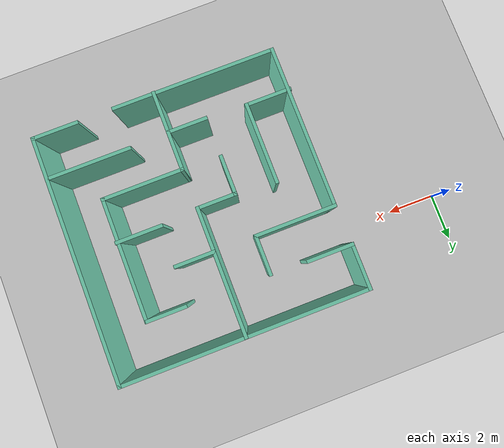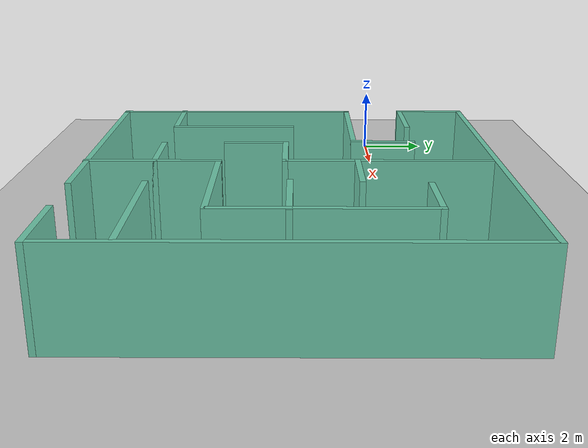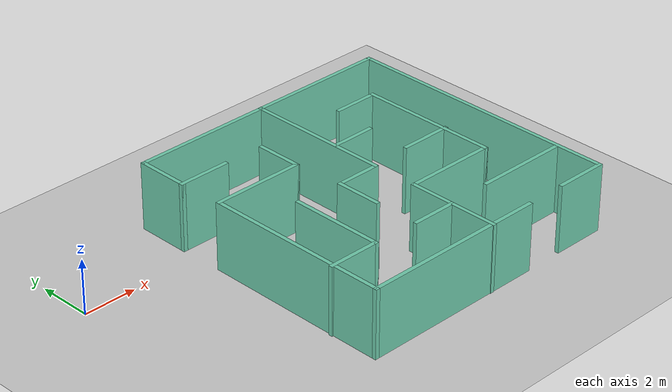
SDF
<sdf version="1.6">
 <world name="default">
  <light name="sun" type="directional">
   <pose>0 0 10 0 -0 0</pose>
   <diffuse>0.8 0.8 0.8 1</diffuse>
   <specular>0.1 0.1 0.1 1</specular>
   <attenuation>
    <range>1000</range>
    <constant>0.9</constant>
    <linear>0.01</linear>
    <quadratic>0.001</quadratic>
   </attenuation>
   <direction>-0.5 0.5 -1</direction>
  </light>
  <model name="ground_plane">
   <static>1</static>
   <link name="link">
    <collision name="collision">
     <geometry><plane><normal>0 0 1</normal><size>100 100</size></plane></geometry>
     <surface><friction><ode><mu>100</mu><mu2>50</mu2></ode></friction></surface>
    </collision>
    <visual name="visual">
     <cast_shadows>0</cast_shadows>
     <geometry><plane><normal>0 0 1</normal><size>100 100</size></plane></geometry>
     <material>
      <script><uri>file://media/materials/scripts/gazebo.material</uri><name>Gazebo/Grey</name></script>
     </material>
    </visual>
   </link>
  </model>
  <gravity>0 0 -9.8</gravity>
  <magnetic_field>6e-06 2.3e-05 -4.2e-05</magnetic_field>
  <atmosphere type="adiabatic"/>
  <physics name="default_physics" default="0" type="ode">
   <max_step_size>0.001</max_step_size>
   <real_time_factor>1</real_time_factor>
   <real_time_update_rate>1000</real_time_update_rate>
  </physics>
  <scene><ambient>0.4 0.4 0.4 1</ambient><background>0.7 0.7 0.7 1</background><shadows>1</shadows></scene>
  <spherical_coordinates>
   <surface_model>EARTH_WGS84</surface_model>
   <latitude_deg>0</latitude_deg>
   <longitude_deg>0</longitude_deg>
   <elevation>0</elevation>
   <heading_deg>0</heading_deg>
  </spherical_coordinates>
  <model name="laberinto">
   <pose>9.79921 -2.73233 0 0 -0 0</pose>
   <link name="Wall_10">
    <collision name="Wall_10_Collision">
     <geometry><box><size>3.5 0.15 2.5</size></box></geometry>
     <pose>0 0 1.25 0 -0 0</pose>
    </collision>
    <visual name="Wall_10_Visual">
     <pose>0 0 1.25 0 -0 0</pose>
     <geometry><box><size>3.5 0.15 2.5</size></box></geometry>
     <material>
      <script><uri>file://media/materials/scripts/gazebo.material</uri><name>Gazebo/Grey</name></script>
      <ambient>0.435294 0.796078 0.67451 1</ambient>
     </material>
    </visual>
    <pose>-3.43379 1.68033 0 0 -0 0</pose>
   </link>
   <link name="Wall_11">
    <collision name="Wall_11_Collision">
     <geometry><box><size>1.75 0.15 2.5</size></box></geometry>
     <pose>0 0 1.25 0 -0 0</pose>
    </collision>
    <visual name="Wall_11_Visual">
     <pose>0 0 1.25 0 -0 0</pose>
     <geometry><box><size>1.75 0.15 2.5</size></box></geometry>
     <material>
      <script><uri>file://media/materials/scripts/gazebo.material</uri><name>Gazebo/Grey</name></script>
      <ambient>0.435294 0.796078 0.67451 1</ambient>
     </material>
    </visual>
    <pose>-1.75879 2.48033 0 0 -0 1.5708</pose>
   </link>
   <link name="Wall_13">
    <collision name="Wall_13_Collision">
     <geometry><box><size>5.5 0.15 2.5</size></box></geometry>
     <pose>0 0 1.25 0 -0 0</pose>
    </collision>
    <visual name="Wall_13_Visual">
     <pose>0 0 1.25 0 -0 0</pose>
     <geometry><box><size>5.5 0.15 2.5</size></box></geometry>
     <material>
      <script><uri>file://media/materials/scripts/gazebo.material</uri><name>Gazebo/Grey</name></script>
      <ambient>0.435294 0.796078 0.67451 1</ambient>
     </material>
    </visual>
    <pose>-0.004278 2.50703 0 0 0 -1.5708</pose>
   </link>
   <link name="Wall_14">
    <collision name="Wall_14_Collision">
     <geometry><box><size>1.75 0.15 2.5</size></box></geometry>
     <pose>0 0 1.25 0 -0 0</pose>
    </collision>
    <visual name="Wall_14_Visual">
     <pose>0 0 1.25 0 -0 0</pose>
     <geometry><box><size>1.75 0.15 2.5</size></box></geometry>
     <material>
      <script><uri>file://media/materials/scripts/gazebo.material</uri><name>Gazebo/Grey</name></script>
      <ambient>0.435294 0.796078 0.67451 1</ambient>
     </material>
    </visual>
    <pose>-0.804278 -0.167975 0 0 -0 3.14159</pose>
   </link>
   <link name="Wall_15">
    <collision name="Wall_15_Collision">
     <geometry><box><size>1.75 0.15 2.5</size></box></geometry>
     <pose>0 0 1.25 0 -0 0</pose>
    </collision>
    <visual name="Wall_15_Visual">
     <pose>0 0 1.25 0 -0 0</pose>
     <geometry><box><size>1.75 0.15 2.5</size></box></geometry>
     <material>
      <script><uri>file://media/materials/scripts/gazebo.material</uri><name>Gazebo/Grey</name></script>
      <ambient>0.435294 0.796078 0.67451 1</ambient>
     </material>
    </visual>
    <pose>-1.60428 -0.967975 0 0 0 -1.5708</pose>
   </link>
   <link name="Wall_17">
    <collision name="Wall_17_Collision">
     <geometry><box><size>2 0.15 2.5</size></box></geometry>
     <pose>0 0 1.25 0 -0 0</pose>
    </collision>
    <visual name="Wall_17_Visual">
     <pose>0 0 1.25 0 -0 0</pose>
     <geometry><box><size>2 0.15 2.5</size></box></geometry>
     <material>
      <script><uri>file://media/materials/scripts/gazebo.material</uri><name>Gazebo/Grey</name></script>
      <ambient>0.435294 0.796078 0.67451 1</ambient>
     </material>
    </visual>
    <pose>-4.23972 -3.38324 0 0 -0 0</pose>
   </link>
   <link name="Wall_18">
    <collision name="Wall_18_Collision">
     <geometry><box><size>3.5 0.15 2.5</size></box></geometry>
     <pose>0 0 1.25 0 -0 0</pose>
    </collision>
    <visual name="Wall_18_Visual">
     <pose>0 0 1.25 0 -0 0</pose>
     <geometry><box><size>3.5 0.15 2.5</size></box></geometry>
     <material>
      <script><uri>file://media/materials/scripts/gazebo.material</uri><name>Gazebo/Grey</name></script>
      <ambient>0.435294 0.796078 0.67451 1</ambient>
     </material>
    </visual>
    <pose>-3.31472 -1.70824 0 0 -0 1.5708</pose>
   </link>
   <link name="Wall_2">
    <collision name="Wall_2_Collision">
     <geometry><box><size>2 0.15 2.5</size></box></geometry>
     <pose>0 0 1.25 0 -0 0</pose>
    </collision>
    <visual name="Wall_2_Visual">
     <pose>0 0 1.25 0 -0 0</pose>
     <geometry><box><size>2 0.15 2.5</size></box></geometry>
     <material>
      <script><uri>file://media/materials/scripts/gazebo.material</uri><name>Gazebo/Grey</name></script>
      <ambient>0.435294 0.796078 0.67451 1</ambient>
     </material>
    </visual>
    <pose>-4.25 3.34205 0 0 -0 3.14159</pose>
   </link>
   <link name="Wall_23">
    <collision name="Wall_23_Collision">
     <geometry><box><size>3.5 0.15 2.5</size></box></geometry>
     <pose>0 0 1.25 0 -0 0</pose>
    </collision>
    <visual name="Wall_23_Visual">
     <pose>0 0 1.25 0 -0 0</pose>
     <geometry><box><size>3.5 0.15 2.5</size></box></geometry>
     <material>
      <script><uri>file://media/materials/scripts/gazebo.material</uri><name>Gazebo/Grey</name></script>
      <ambient>0.435294 0.796078 0.67451 1</ambient>
     </material>
    </visual>
    <pose>0.022323 -3.51705 0 0 -0 1.5708</pose>
   </link>
   <link name="Wall_24">
    <collision name="Wall_24_Collision">
     <geometry><box><size>3.5 0.15 2.5</size></box></geometry>
     <pose>0 0 1.25 0 -0 0</pose>
    </collision>
    <visual name="Wall_24_Visual">
     <pose>0 0 1.25 0 -0 0</pose>
     <geometry><box><size>3.5 0.15 2.5</size></box></geometry>
     <material>
      <script><uri>file://media/materials/scripts/gazebo.material</uri><name>Gazebo/Grey</name></script>
      <ambient>0.435294 0.796078 0.67451 1</ambient>
     </material>
    </visual>
    <pose>1.69732 -1.84205 0 0 -0 0</pose>
   </link>
   <link name="Wall_25">
    <collision name="Wall_25_Collision">
     <geometry><box><size>5.25 0.15 2.5</size></box></geometry>
     <pose>0 0 1.25 0 -0 0</pose>
    </collision>
    <visual name="Wall_25_Visual">
     <pose>0 0 1.25 0 -0 0</pose>
     <geometry><box><size>5.25 0.15 2.5</size></box></geometry>
     <material>
      <script><uri>file://media/materials/scripts/gazebo.material</uri><name>Gazebo/Grey</name></script>
      <ambient>0.435294 0.796078 0.67451 1</ambient>
     </material>
    </visual>
    <pose>3.37232 0.707947 0 0 -0 1.5708</pose>
   </link>
   <link name="Wall_26">
    <collision name="Wall_26_Collision">
     <geometry><box><size>1.75 0.15 2.5</size></box></geometry>
     <pose>0 0 1.25 0 -0 0</pose>
    </collision>
    <visual name="Wall_26_Visual">
     <pose>0 0 1.25 0 -0 0</pose>
     <geometry><box><size>1.75 0.15 2.5</size></box></geometry>
     <material>
      <script><uri>file://media/materials/scripts/gazebo.material</uri><name>Gazebo/Grey</name></script>
      <ambient>0.435294 0.796078 0.67451 1</ambient>
     </material>
    </visual>
    <pose>2.57232 3.25795 0 0 -0 3.14159</pose>
   </link>
   <link name="Wall_28">
    <collision name="Wall_28_Collision">
     <geometry><box><size>1.75 0.15 2.5</size></box></geometry>
     <pose>0 0 1.25 0 -0 0</pose>
    </collision>
    <visual name="Wall_28_Visual">
     <pose>0 0 1.25 0 -0 0</pose>
     <geometry><box><size>1.75 0.15 2.5</size></box></geometry>
     <material>
      <script><uri>file://media/materials/scripts/gazebo.material</uri><name>Gazebo/Grey</name></script>
      <ambient>0.435294 0.796078 0.67451 1</ambient>
     </material>
    </visual>
    <pose>0.795722 1.6708 0 0 -0 0</pose>
   </link>
   <link name="Wall_3">
    <collision name="Wall_3_Collision">
     <geometry><box><size>2 0.15 2.5</size></box></geometry>
     <pose>0 0 1.25 0 -0 0</pose>
    </collision>
    <visual name="Wall_3_Visual">
     <pose>0 0 1.25 0 -0 0</pose>
     <geometry><box><size>2 0.15 2.5</size></box></geometry>
     <material>
      <script><uri>file://media/materials/scripts/gazebo.material</uri><name>Gazebo/Grey</name></script>
      <ambient>0.435294 0.796078 0.67451 1</ambient>
     </material>
    </visual>
    <pose>-5.175 4.26705 0 0 -0 1.5708</pose>
   </link>
   <link name="Wall_30">
    <collision name="Wall_30_Collision">
     <geometry><box><size>2 0.15 2.5</size></box></geometry>
     <pose>0 0 1.25 0 -0 0</pose>
    </collision>
    <visual name="Wall_30_Visual">
     <pose>0 0 1.25 0 -0 0</pose>
     <geometry><box><size>2 0.15 2.5</size></box></geometry>
     <material>
      <script><uri>file://media/materials/scripts/gazebo.material</uri><name>Gazebo/Grey</name></script>
      <ambient>0.435294 0.796078 0.67451 1</ambient>
     </material>
    </visual>
    <pose>2.50215 -0.031614 0 0 -0 3.14159</pose>
   </link>
   <link name="Wall_32">
    <collision name="Wall_32_Collision">
     <geometry><box><size>1.75 0.15 2.5</size></box></geometry>
     <pose>0 0 1.25 0 -0 0</pose>
    </collision>
    <visual name="Wall_32_Visual">
     <pose>0 0 1.25 0 -0 0</pose>
     <geometry><box><size>1.75 0.15 2.5</size></box></geometry>
     <material>
      <script><uri>file://media/materials/scripts/gazebo.material</uri><name>Gazebo/Grey</name></script>
      <ambient>0.435294 0.796078 0.67451 1</ambient>
     </material>
    </visual>
    <pose>-0.777677 -3.46304 0 0 -0 3.14159</pose>
   </link>
   <link name="Wall_34">
    <collision name="Wall_34_Collision">
     <geometry><box><size>3.5 0.15 2.5</size></box></geometry>
     <pose>0 0 1.25 0 -0 0</pose>
    </collision>
    <visual name="Wall_34_Visual">
     <pose>0 0 1.25 0 -0 0</pose>
     <geometry><box><size>3.5 0.15 2.5</size></box></geometry>
     <material>
      <script><uri>file://media/materials/scripts/gazebo.material</uri><name>Gazebo/Grey</name></script>
      <ambient>0.435294 0.796078 0.67451 1</ambient>
     </material>
    </visual>
    <pose>3.37476 -3.40984 0 0 -0 3.14159</pose>
   </link>
   <link name="Wall_4">
    <collision name="Wall_4_Collision">
     <geometry><box><size>10.5 0.15 2.5</size></box></geometry>
     <pose>0 0 1.25 0 -0 0</pose>
    </collision>
    <visual name="Wall_4_Visual">
     <pose>0 0 1.25 0 -0 0</pose>
     <geometry><box><size>10.5 0.15 2.5</size></box></geometry>
     <material>
      <script><uri>file://media/materials/scripts/gazebo.material</uri><name>Gazebo/Grey</name></script>
      <ambient>0.435294 0.796078 0.67451 1</ambient>
     </material>
    </visual>
    <pose>0 5.19205 0 0 -0 0</pose>
   </link>
   <link name="Wall_5">
    <collision name="Wall_5_Collision">
     <geometry><box><size>10.5 0.15 2.5</size></box></geometry>
     <pose>0 0 1.25 0 -0 0</pose>
    </collision>
    <visual name="Wall_5_Visual">
     <pose>0 0 1.25 0 -0 0</pose>
     <geometry><box><size>10.5 0.15 2.5</size></box></geometry>
     <material>
      <script><uri>file://media/materials/scripts/gazebo.material</uri><name>Gazebo/Grey</name></script>
      <ambient>0.435294 0.796078 0.67451 1</ambient>
     </material>
    </visual>
    <pose>5.175 0.017053 0 0 0 -1.5708</pose>
   </link>
   <link name="Wall_6">
    <collision name="Wall_6_Collision">
     <geometry><box><size>2 0.15 2.5</size></box></geometry>
     <pose>0 0 1.25 0 -0 0</pose>
    </collision>
    <visual name="Wall_6_Visual">
     <pose>0 0 1.25 0 -0 0</pose>
     <geometry><box><size>2 0.15 2.5</size></box></geometry>
     <material>
      <script><uri>file://media/materials/scripts/gazebo.material</uri><name>Gazebo/Grey</name></script>
      <ambient>0.435294 0.796078 0.67451 1</ambient>
     </material>
    </visual>
    <pose>4.25 -5.15795 0 0 -0 3.14159</pose>
   </link>
   <link name="Wall_8">
    <collision name="Wall_8_Collision">
     <geometry><box><size>7 0.15 2.5</size></box></geometry>
     <pose>0 0 1.25 0 -0 0</pose>
    </collision>
    <visual name="Wall_8_Visual">
     <pose>0 0 1.25 0 -0 0</pose>
     <geometry><box><size>7 0.15 2.5</size></box></geometry>
     <material>
      <script><uri>file://media/materials/scripts/gazebo.material</uri><name>Gazebo/Grey</name></script>
      <ambient>0.435294 0.796078 0.67451 1</ambient>
     </material>
    </visual>
    <pose>-1.68379 -5.16967 0 0 -0 3.14159</pose>
   </link>
   <link name="Wall_9">
    <collision name="Wall_9_Collision">
     <geometry><box><size>7 0.15 2.5</size></box></geometry>
     <pose>0 0 1.25 0 -0 0</pose>
    </collision>
    <visual name="Wall_9_Visual">
     <pose>0 0 1.25 0 -0 0</pose>
     <geometry><box><size>7 0.15 2.5</size></box></geometry>
     <material>
      <script><uri>file://media/materials/scripts/gazebo.material</uri><name>Gazebo/Grey</name></script>
      <ambient>0.435294 0.796078 0.67451 1</ambient>
     </material>
    </visual>
    <pose>-5.10879 -1.74467 0 0 -0 1.5708</pose>
   </link>
   <static>1</static>
  </model>
 </world>
</sdf>
